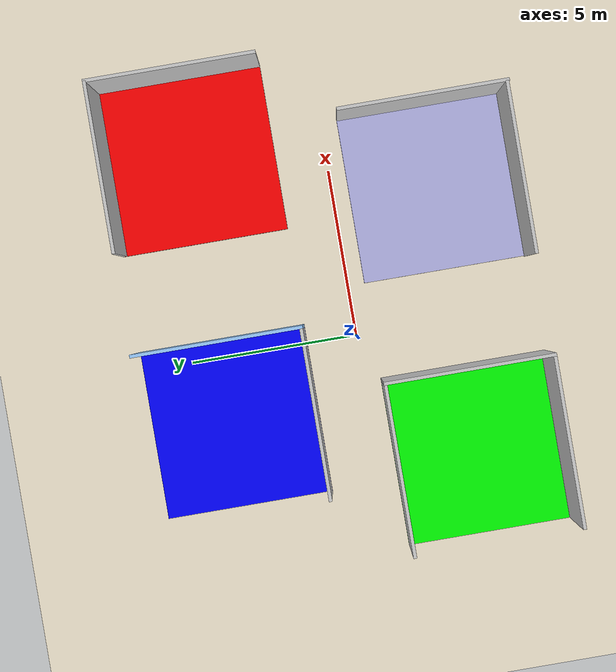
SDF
<sdf version="1.8">
 <world name="collision_test">
  <physics name="1ms" type="ignored">
   <max_step_size>0.001</max_step_size>
   <real_time_factor>1</real_time_factor>
   <real_time_update_rate>1000</real_time_update_rate>
  </physics>
  <plugin name="ignition::gazebo::systems::Physics" filename="ignition-gazebo-physics-system"/>
  <plugin name="ignition::gazebo::systems::UserCommands" filename="ignition-gazebo-user-commands-system"/>
  <plugin name="ignition::gazebo::systems::SceneBroadcaster" filename="ignition-gazebo-scene-broadcaster-system"/>
  <plugin filename="ignition-gazebo-sensors-system" name="ignition::gazebo::systems::Sensors">
   <render_engine>ogre2</render_engine>
  </plugin>
  <plugin filename="libignition-gazebo-contact-system.so" name="ignition::gazebo::systems::Contact"/>
  <scene><ambient>1.0 1.0 1.0</ambient><background>0.8 0.8 0.8</background></scene>
  <light type="directional" name="sun">
   <pose>0 0 10 0 0 0</pose>
   <diffuse>0.8 0.8 0.8 1</diffuse>
   <specular>0.2 0.2 0.2 1</specular>
   <attenuation>
    <range>1000</range>
    <constant>0.9</constant>
    <linear>0.01</linear>
    <quadratic>0.001</quadratic>
   </attenuation>
   <direction>-0.5 0.1 -0.9</direction>
  </light>
  <model name="ground_plane">
   <static>true</static>
   <link name="link">
    <collision name="collision">
     <geometry><plane><normal>0 0 1</normal><size>100 100</size></plane></geometry>
    </collision>
    <visual name="visual">
     <geometry><plane><normal>0 0 1</normal><size>100 100</size></plane></geometry>
     <material>
      <ambient>0.94 0.90 0.81 1</ambient>
      <diffuse>0.94 0.90 0.81 1</diffuse>
      <specular>1 1 1 0</specular>
     </material>
    </visual>
   </link>
  </model>
  <model name="sky_cam">
   <static>true</static>
   <link name="camera_link">
    <pose>0 0 10 1.57 1.57 0</pose>
    <sensor name="sky_cam" type="camera">
     <camera>
      <horizontal_fov>1.047</horizontal_fov>
      <image><width>1024</width><height>768</height></image>
      <clip><near>0.1</near><far>100</far></clip>
     </camera>
     <always_on>1</always_on>
     <update_rate>1</update_rate>
     <visualize>true</visualize>
     <topic>sky_cam</topic>
    </sensor>
   </link>
  </model>
  <model name="bedroom">
   <pose>4 -3 0.05 0 0 0</pose>
   <link name="link">
    <visual name="visual">
     <geometry><box><size>5 5 0.1</size></box></geometry>
     <material><ambient>0.7 0.7 0.9 1</ambient><diffuse>0.7 0.7 0.9 1</diffuse></material>
    </visual>
    <collision name="collision"><geometry><box><size>5 5 0.1</size></box></geometry></collision>
   </link>
  </model>
  <model name="kitchen">
   <pose>6 4 0.05 0 0 0</pose>
   <link name="link">
    <visual name="visual">
     <geometry><box><size>5 5 0.1</size></box></geometry>
     <material><ambient>1 0 0 1</ambient><diffuse>1 0 0 1</diffuse></material>
    </visual>
    <collision name="collision"><geometry><box><size>5 5 0.1</size></box></geometry></collision>
   </link>
  </model>
  <model name="bathroom">
   <pose>-2 4 0.05 0 0 0</pose>
   <link name="link">
    <visual name="visual">
     <geometry><box><size>5 5 0.1</size></box></geometry>
     <material><ambient>0 0 1 1</ambient><diffuse>0 0 1 1</diffuse></material>
    </visual>
    <collision name="collision">
     <geometry><box><size>5 5 0.1</size></box></geometry>
     <surface><friction><ode><mu>0.1</mu><mu2>0.1</mu2></ode></friction></surface>
    </collision>
   </link>
  </model>
  <model name="living_room">
   <pose>-4 -3 0.05 0 0 0</pose>
   <link name="link">
    <visual name="visual">
     <geometry><box><size>5 5 0.1</size></box></geometry>
     <material><ambient>0 1 0 1</ambient><diffuse>0 1 0 1</diffuse></material>
    </visual>
    <collision name="collision"><geometry><box><size>5 5 0.1</size></box></geometry></collision>
   </link>
  </model>
  <gravity>0 0 -9.8</gravity>
  <magnetic_field>6e-06 2.3e-05 -4.2e-05</magnetic_field>
  <atmosphere type="adiabatic"/>
  <physics type="ode">
   <max_step_size>0.001</max_step_size>
   <real_time_factor>1</real_time_factor>
   <real_time_update_rate>1000</real_time_update_rate>
  </physics>
  <scene><ambient>0.4 0.4 0.4 1</ambient><background>0.8 0.8 0.8 1</background><shadows>true</shadows></scene>
  <model name="bedroom_wall_south">
   <static>true</static>
   <pose>3.9780 -5.4260 1.25 0 0 0</pose>
   <link name="link">
    <collision name="collision"><geometry><box><size>5 0.1 2.5</size></box></geometry></collision>
    <visual name="visual">
     <geometry><box><size>5 0.1 2.5</size></box></geometry>
     <material>
      <ambient>0.8 0.8 0.8 1</ambient>
      <diffuse>0.8 0.8 0.8 1</diffuse>
      <specular>0.1 0.1 0.1 1</specular>
     </material>
    </visual>
   </link>
  </model>
  <model name="bedroom_wall_east">
   <static>true</static>
   <pose>6.5 -3 1.25 0 0 0</pose>
   <link name="link">
    <collision name="collision"><geometry><box><size>0.1 5 2.5</size></box></geometry></collision>
    <visual name="visual">
     <geometry><box><size>0.1 5 2.5</size></box></geometry>
     <material>
      <ambient>0.8 0.8 0.8 1</ambient>
      <diffuse>0.8 0.8 0.8 1</diffuse>
      <specular>0.1 0.1 0.1 1</specular>
     </material>
    </visual>
   </link>
  </model>
  <model name="kitchen_wall_north">
   <static>true</static>
   <pose>6 6.45 1.25 0 0 0</pose>
   <link name="link">
    <collision name="collision"><geometry><box><size>5 0.1 2.5</size></box></geometry></collision>
    <visual name="visual">
     <geometry><box><size>5 0.1 2.5</size></box></geometry>
     <material>
      <ambient>0.8 0.8 0.8 1</ambient>
      <diffuse>0.8 0.8 0.8 1</diffuse>
      <specular>0.1 0.1 0.1 1</specular>
     </material>
    </visual>
   </link>
  </model>
  <model name="kitchen_wall_east">
   <static>true</static>
   <pose>8.5 4 1.25 0 0 0</pose>
   <link name="link">
    <collision name="collision"><geometry><box><size>0.1 5 2.5</size></box></geometry></collision>
    <visual name="visual">
     <geometry><box><size>0.1 5 2.5</size></box></geometry>
     <material>
      <ambient>0.8 0.8 0.8 1</ambient>
      <diffuse>0.8 0.8 0.8 1</diffuse>
      <specular>0.1 0.1 0.1 1</specular>
     </material>
    </visual>
   </link>
  </model>
  <model name="bathroom_wall_south">
   <static>true</static>
   <pose>-2 1.55 1.25 0 0 0</pose>
   <link name="link">
    <collision name="collision"><geometry><box><size>5 0.1 2.5</size></box></geometry></collision>
    <visual name="visual">
     <geometry><box><size>5 0.1 2.5</size></box></geometry>
     <material>
      <ambient>0.8 0.8 0.8 1</ambient>
      <diffuse>0.8 0.8 0.8 1</diffuse>
      <specular>0.1 0.1 0.1 1</specular>
     </material>
    </visual>
   </link>
  </model>
  <model name="bathroom_wall_west">
   <static>true</static>
   <pose>0.54 4 1.25 0 0 0</pose>
   <link name="link">
    <collision name="collision"><geometry><box><size>0.1 5 2.5</size></box></geometry></collision>
    <visual name="visual">
     <geometry><box><size>0.1 5 2.5</size></box></geometry>
     <material>
      <ambient>0.6 0.8 1.0 1</ambient>
      <diffuse>0.6 0.8 1.0 1</diffuse>
      <specular>0.1 0.1 0.1 1</specular>
     </material>
    </visual>
   </link>
  </model>
  <model name="living_room_wall_north">
   <static>true</static>
   <pose>-4 -0.55 1.25 0 0 0</pose>
   <link name="link">
    <collision name="collision"><geometry><box><size>5 0.1 2.5</size></box></geometry></collision>
    <visual name="visual">
     <geometry><box><size>5 0.1 2.5</size></box></geometry>
     <material>
      <ambient>0.8 0.8 0.8 1</ambient>
      <diffuse>0.8 0.8 0.8 1</diffuse>
      <specular>0.1 0.1 0.1 1</specular>
     </material>
    </visual>
   </link>
  </model>
  <model name="living_room_wall_south">
   <static>true</static>
   <pose>-4 -5.45 1.25 0 0 0</pose>
   <link name="link">
    <collision name="collision"><geometry><box><size>5 0.1 2.5</size></box></geometry></collision>
    <visual name="visual">
     <geometry><box><size>5 0.1 2.5</size></box></geometry>
     <material>
      <ambient>0.8 0.8 0.8 1</ambient>
      <diffuse>0.8 0.8 0.8 1</diffuse>
      <specular>0.1 0.1 0.1 1</specular>
     </material>
    </visual>
   </link>
  </model>
  <model name="living_room_wall_east">
   <static>true</static>
   <pose>-1.45 -3 1.25 0 0 0</pose>
   <link name="link">
    <collision name="collision"><geometry><box><size>0.1 5 2.5</size></box></geometry></collision>
    <visual name="visual">
     <geometry><box><size>0.1 5 2.5</size></box></geometry>
     <material>
      <ambient>0.8 0.8 0.8 1</ambient>
      <diffuse>0.8 0.8 0.8 1</diffuse>
      <specular>0.1 0.1 0.1 1</specular>
     </material>
    </visual>
   </link>
  </model>
 </world>
</sdf>
